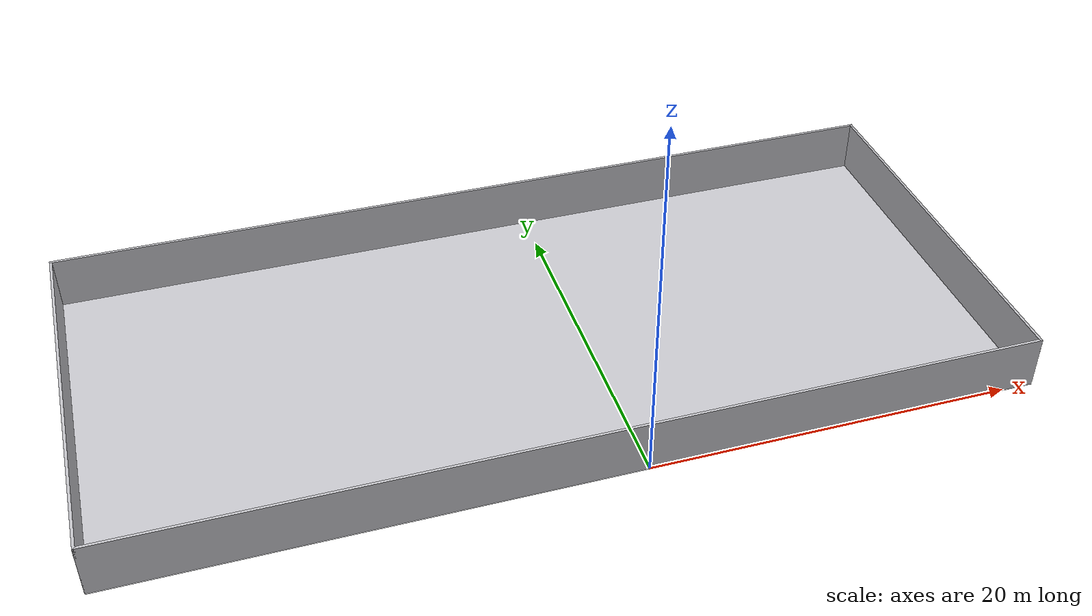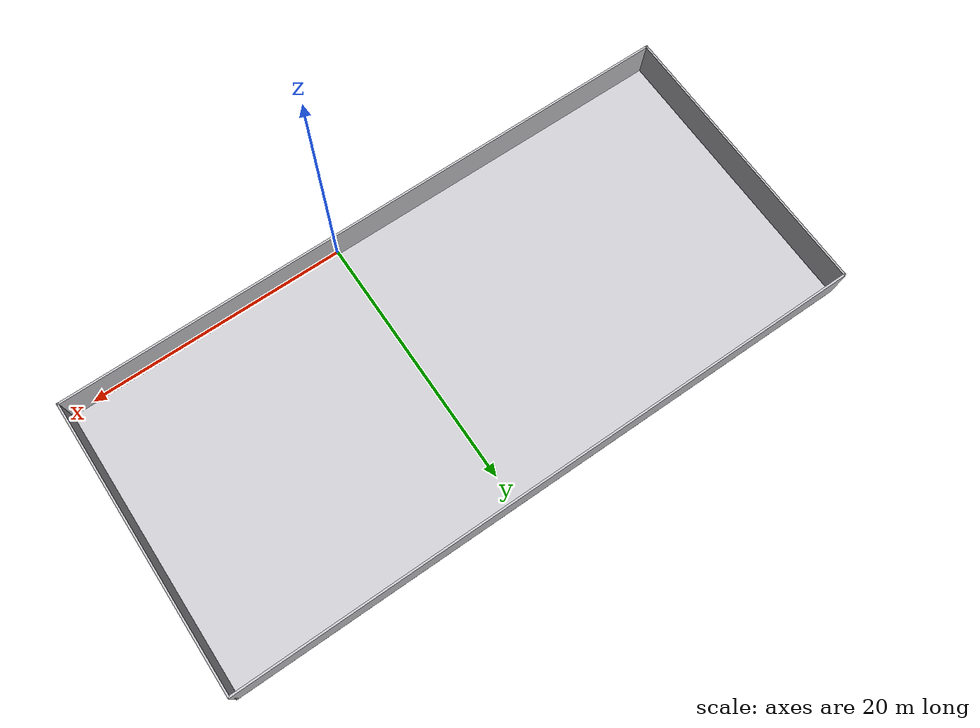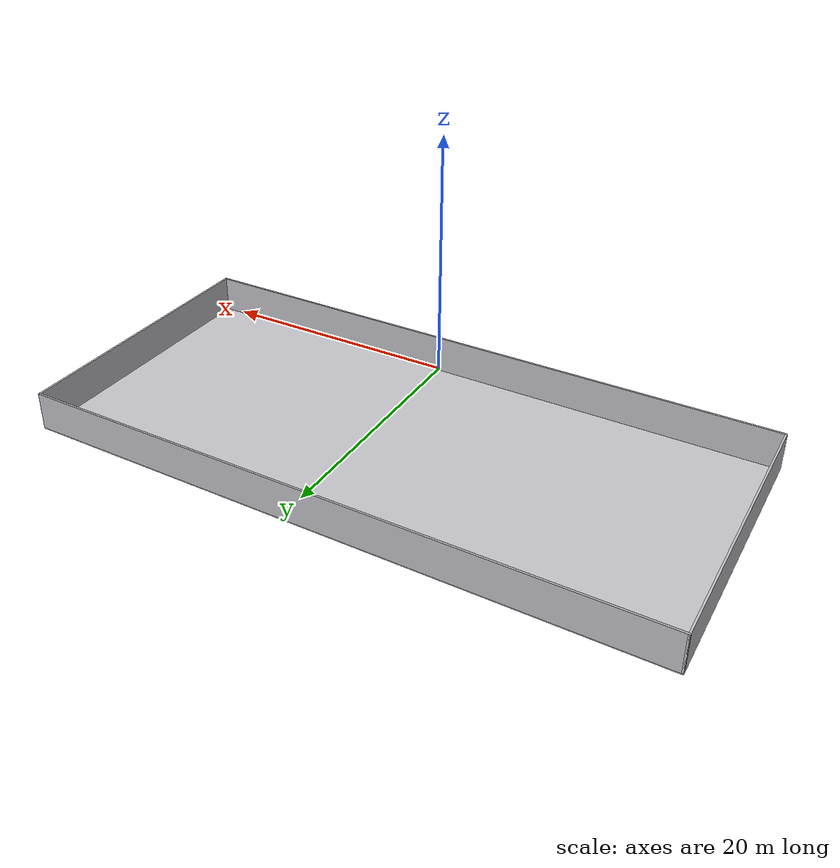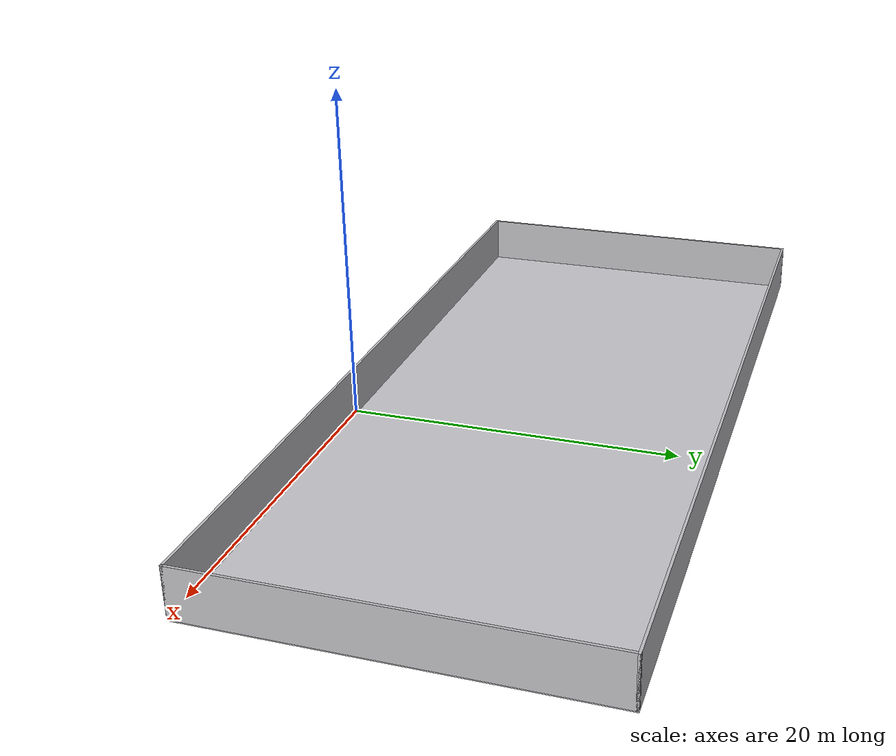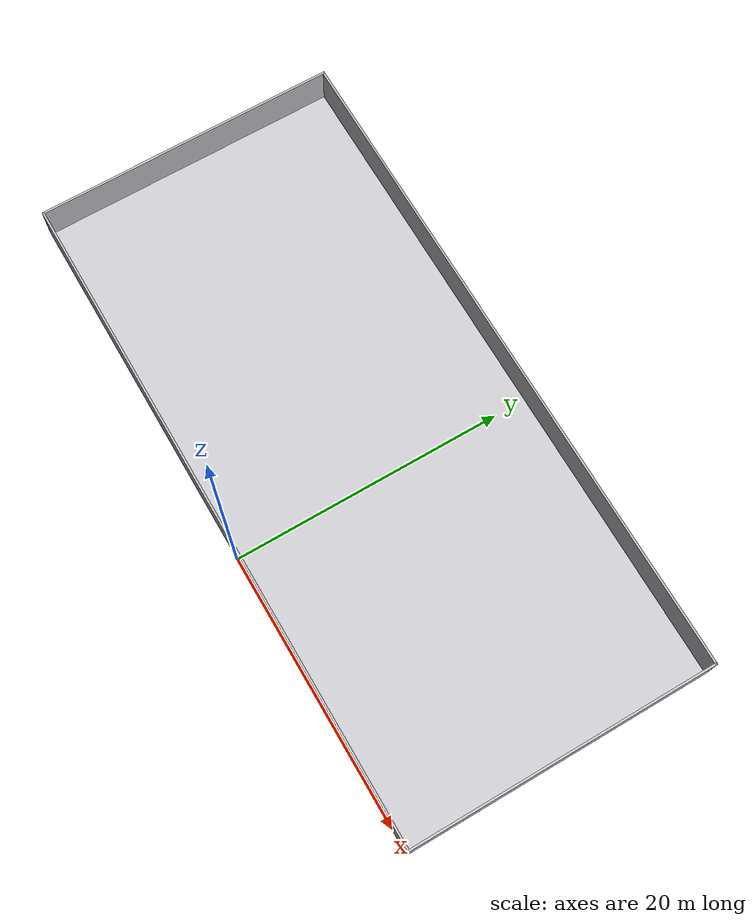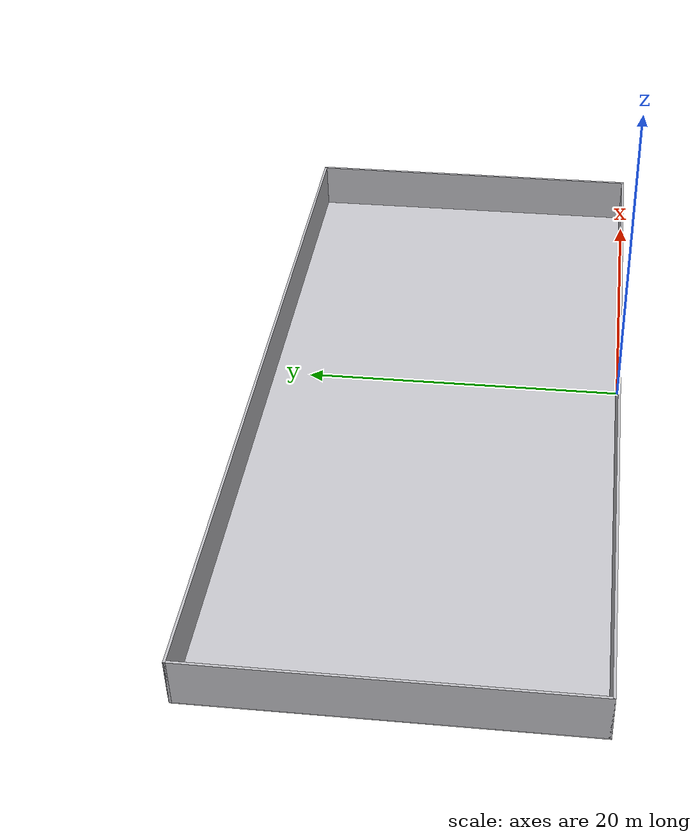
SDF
<sdf version="1.6">
 <world name="world_office">
  <model name="office_floor_plane">
   <pose>-2.9699999999999998
        11.25
        -0.001
        0
        0
        0</pose>
   <static>true</static>
   <link name="link">
    <visual name="visual">
     <geometry><plane><normal>0 0 1</normal><size>49.5 22.5</size></plane></geometry>
     <material>
      <ambient>0.78 0.78 0.8 1</ambient>
      <diffuse>0.78 0.78 0.8 1</diffuse>
      <specular>0.08 0.08 0.08 1</specular>
     </material>
    </visual>
    <collision name="collision">
     <geometry><plane><normal>0 0 1</normal><size>49.5 22.5</size></plane></geometry>
     <surface><friction><ode><mu>1</mu><mu2>1</mu2></ode></friction></surface>
    </collision>
   </link>
  </model>
  <model name="office_outer_boundary">
   <static>true</static>
   <link name="link">
    <visual name="boundary_visual_1">
     <pose>-2.97 0.075 1.5 0 0 0</pose>
     <geometry><box><size>49.5 0.15 3.0</size></box></geometry>
     <material>
      <ambient>0.76 0.76 0.78 1.0</ambient>
      <diffuse>0.76 0.76 0.78 1.0</diffuse>
      <specular>0.08 0.08 0.08 1</specular>
     </material>
    </visual>
    <collision name="boundary_collision_1">
     <pose>-2.97 0.075 1.5 0 0 0</pose>
     <geometry><box><size>49.5 0.15 3.0</size></box></geometry>
    </collision>
    <visual name="boundary_visual_2">
     <pose>-2.97 22.425 1.5 0 0 0</pose>
     <geometry><box><size>49.5 0.15 3.0</size></box></geometry>
     <material>
      <ambient>0.76 0.76 0.78 1.0</ambient>
      <diffuse>0.76 0.76 0.78 1.0</diffuse>
      <specular>0.08 0.08 0.08 1</specular>
     </material>
    </visual>
    <collision name="boundary_collision_2">
     <pose>-2.97 22.425 1.5 0 0 0</pose>
     <geometry><box><size>49.5 0.15 3.0</size></box></geometry>
    </collision>
    <visual name="boundary_visual_3">
     <pose>-27.645 11.25 1.5 0 0 0</pose>
     <geometry><box><size>0.15 22.5 3.0</size></box></geometry>
     <material>
      <ambient>0.76 0.76 0.78 1.0</ambient>
      <diffuse>0.76 0.76 0.78 1.0</diffuse>
      <specular>0.08 0.08 0.08 1</specular>
     </material>
    </visual>
    <collision name="boundary_collision_3">
     <pose>-27.645 11.25 1.5 0 0 0</pose>
     <geometry><box><size>0.15 22.5 3.0</size></box></geometry>
    </collision>
    <visual name="boundary_visual_4">
     <pose>21.705 11.25 1.5 0 0 0</pose>
     <geometry><box><size>0.15 22.5 3.0</size></box></geometry>
     <material>
      <ambient>0.76 0.76 0.78 1.0</ambient>
      <diffuse>0.76 0.76 0.78 1.0</diffuse>
      <specular>0.08 0.08 0.08 1</specular>
     </material>
    </visual>
    <collision name="boundary_collision_4">
     <pose>21.705 11.25 1.5 0 0 0</pose>
     <geometry><box><size>0.15 22.5 3.0</size></box></geometry>
    </collision>
   </link>
  </model>
 </world>
</sdf>
